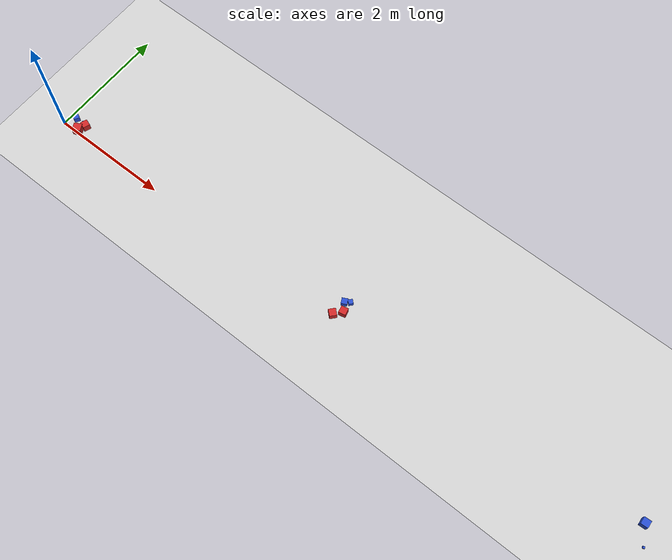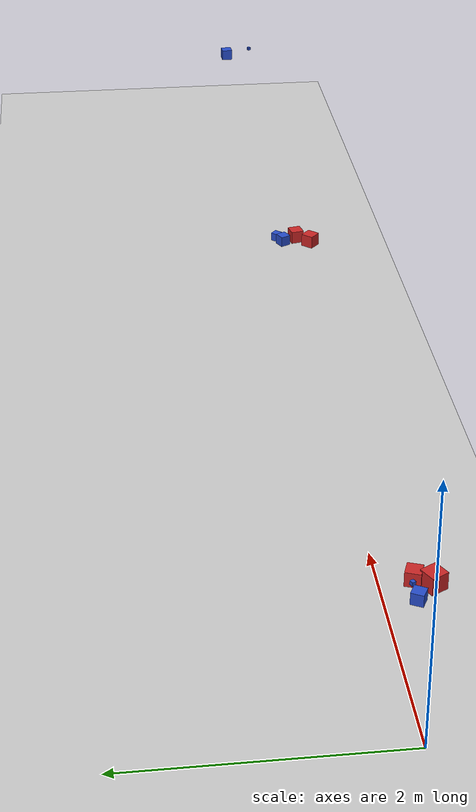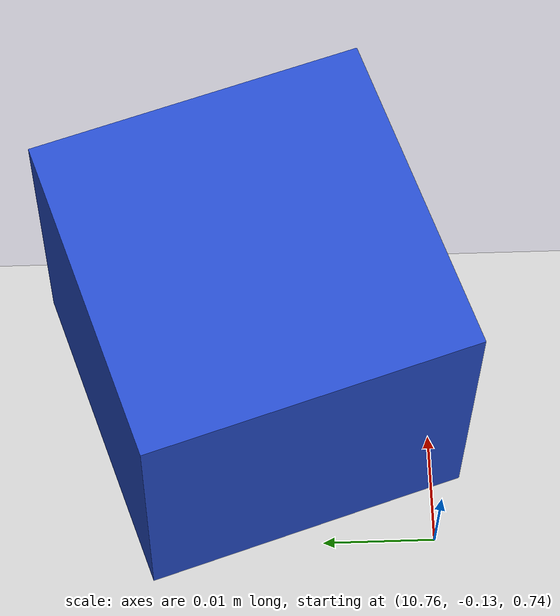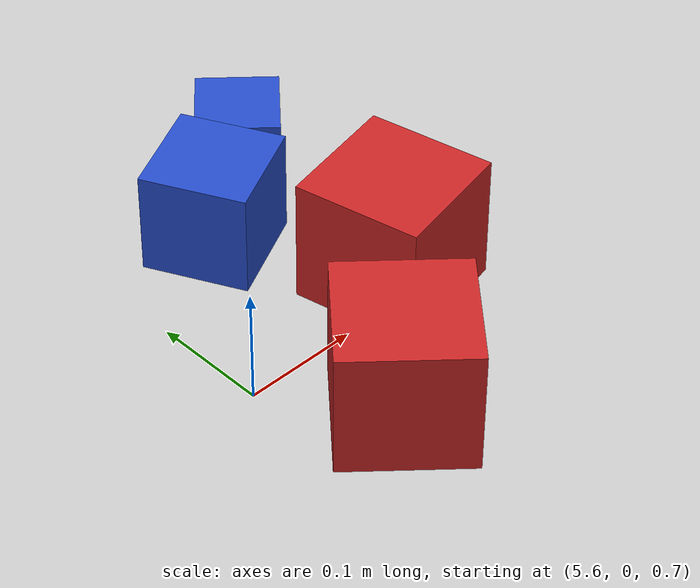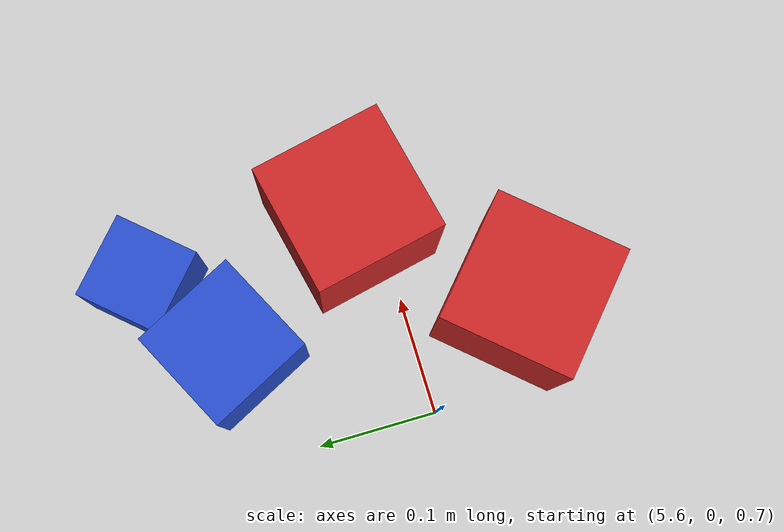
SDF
<sdf version="1.4">
 <world name="simple">
  <include><uri>model://ground_plane</uri></include>
  <include><uri>model://sun</uri></include>
  <include>
   <uri>model://red_cube11cm</uri>
   <name>block11</name>
   <pose>0.754880411714 -0.0436306564323 0.75 0 0 -1.92317189392</pose>
  </include>
  <include>
   <uri>model://blue_cube9cm</uri>
   <name>block12</name>
   <pose>0.545441286525 -0.0335329104321 0.75 0 0 -0.482542442139</pose>
  </include>
  <include>
   <uri>model://red_cube13cm</uri>
   <name>block13</name>
   <pose>0.704410546982 -0.163405454771 0.75 0 0 0.497745082275</pose>
  </include>
  <include>
   <uri>model://blue_cube3cm</uri>
   <name>block14</name>
   <pose>0.681433549751 -0.0222561867379 0.75 0 0 -2.65742875703</pose>
  </include>
  <include>
   <uri>model://red_cube11cm</uri>
   <name>block21</name>
   <pose>5.66863076144 -0.0925170860116 0.75 0 0 2.41361506734</pose>
  </include>
  <include>
   <uri>model://blue_cube7cm</uri>
   <name>block22</name>
   <pose>5.76615813315 0.198740282912 0.75 0 0 -2.29880798425</pose>
  </include>
  <include>
   <uri>model://red_cube11cm</uri>
   <name>block23</name>
   <pose>5.77336483006 0.0245632001172 0.75 0 0 -2.9273801447</pose>
  </include>
  <include>
   <uri>model://blue_cube9cm</uri>
   <name>block24</name>
   <pose>5.69436741538 0.148233165353 0.75 0 0 -2.67254816571</pose>
  </include>
  <include>
   <uri>model://blue_cube11cm</uri>
   <name>block32</name>
   <pose>10.6341067871 0.162633380396 0.75 0 0 -1.51383358031</pose>
  </include>
  <include>
   <uri>model://blue_cube3cm</uri>
   <name>block34</name>
   <pose>10.7775802776 -0.114227282461 0.75 0 0 -2.82854383549</pose>
  </include>
 </world>
</sdf>

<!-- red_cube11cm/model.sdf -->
<sdf version='1.4'>
  <model name="red_cube11cm">
      <static>0</static>
      <link name='link'>
        <inertial>
          <mass>0.3</mass>
          <inertia>
            <ixx>0.001</ixx>
            <ixy>0.000000</ixy>
            <ixz>0.000000</ixz>
            <iyy>0.001</iyy>
            <iyz>0.000000</iyz>
            <izz>0.001</izz>
          </inertia>
        </inertial>
        <collision name='collision'>
          <geometry>
            <box>
              <size>0.110 0.110 0.110</size>
            </box>
          </geometry>
          <surface>
            <friction>
              <ode>
                <mu>5.0</mu>
                <mu2>5.0</mu2>
              </ode>
            </friction>
            <contact>
              <ode>
                <kp>1000000.0</kp>
                <kd>100.0</kd>
                <max_vel>1.0</max_vel>
                <min_depth>0.002</min_depth>
              </ode>
            </contact>
          </surface>
        </collision>
        <visual name='visual'>
          <geometry>
            <box>
              <size>0.110 0.110 0.110</size>
            </box>
          </geometry>
          <material>
            <script>
              <uri>file://media/materials/scripts/gazebo.material</uri>
              <name>Gazebo/Red</name>
            </script>
          </material>
        </visual>
        <velocity_decay>
          <linear>0.000000</linear>
          <angular>0.000000</angular>
        </velocity_decay>
        <self_collide>0</self_collide>
        <kinematic>0</kinematic>
        <gravity>1</gravity>
      </link>
  </model>
</sdf>

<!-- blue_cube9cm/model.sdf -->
<sdf version='1.4'>
  <model name="blue_cube9cm">
      <static>0</static>
      <link name='link'>
        <inertial>
          <mass>0.3</mass>
          <inertia>
            <ixx>0.001</ixx>
            <ixy>0.000000</ixy>
            <ixz>0.000000</ixz>
            <iyy>0.001</iyy>
            <iyz>0.000000</iyz>
            <izz>0.001</izz>
          </inertia>
        </inertial>
        <collision name='collision'>
          <geometry>
            <box>
              <size>0.090 0.090 0.090</size>
            </box>
          </geometry>
          <surface>
            <friction>
              <ode>
                <mu>5.0</mu>
                <mu2>5.0</mu2>
              </ode>
            </friction>
            <contact>
              <ode>
                <kp>1000000.0</kp>
                <kd>100.0</kd>
                <max_vel>1.0</max_vel>
                <min_depth>0.002</min_depth>
              </ode>
            </contact>
          </surface>
        </collision>
        <visual name='visual'>
          <geometry>
            <box>
              <size>0.090 0.090 0.090</size>
            </box>
          </geometry>
          <material>
            <script>
              <uri>file://media/materials/scripts/gazebo.material</uri>
              <name>Gazebo/Blue</name>
            </script>
          </material>
        </visual>
        <velocity_decay>
          <linear>0.000000</linear>
          <angular>0.000000</angular>
        </velocity_decay>
        <self_collide>0</self_collide>
        <kinematic>0</kinematic>
        <gravity>1</gravity>
      </link>
  </model>
</sdf>

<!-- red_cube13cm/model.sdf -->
<sdf version='1.4'>
  <model name="red_cube13cm">
      <static>0</static>
      <link name='link'>
        <inertial>
          <mass>0.3</mass>
          <inertia>
            <ixx>0.001</ixx>
            <ixy>0.000000</ixy>
            <ixz>0.000000</ixz>
            <iyy>0.001</iyy>
            <iyz>0.000000</iyz>
            <izz>0.001</izz>
          </inertia>
        </inertial>
        <collision name='collision'>
          <geometry>
            <box>
              <size>0.130 0.130 0.130</size>
            </box>
          </geometry>
          <surface>
            <friction>
              <ode>
                <mu>5.0</mu>
                <mu2>5.0</mu2>
              </ode>
            </friction>
            <contact>
              <ode>
                <kp>1000000.0</kp>
                <kd>100.0</kd>
                <max_vel>1.0</max_vel>
                <min_depth>0.002</min_depth>
              </ode>
            </contact>
          </surface>
        </collision>
        <visual name='visual'>
          <geometry>
            <box>
              <size>0.130 0.130 0.130</size>
            </box>
          </geometry>
          <material>
            <script>
              <uri>file://media/materials/scripts/gazebo.material</uri>
              <name>Gazebo/Red</name>
            </script>
          </material>
        </visual>
        <velocity_decay>
          <linear>0.000000</linear>
          <angular>0.000000</angular>
        </velocity_decay>
        <self_collide>0</self_collide>
        <kinematic>0</kinematic>
        <gravity>1</gravity>
      </link>
  </model>
</sdf>

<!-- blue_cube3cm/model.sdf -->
<sdf version='1.4'>
  <model name="blue_cube3cm">
      <static>0</static>
      <link name='link'>
        <inertial>
          <mass>0.3</mass>
          <inertia>
            <ixx>0.001</ixx>
            <ixy>0.000000</ixy>
            <ixz>0.000000</ixz>
            <iyy>0.001</iyy>
            <iyz>0.000000</iyz>
            <izz>0.001</izz>
          </inertia>
        </inertial>
        <collision name='collision'>
          <geometry>
            <box>
              <size>0.030 0.030 0.030</size>
            </box>
          </geometry>
          <surface>
            <friction>
              <ode>
                <mu>5.0</mu>
                <mu2>5.0</mu2>
              </ode>
            </friction>
            <contact>
              <ode>
                <kp>1000000.0</kp>
                <kd>100.0</kd>
                <max_vel>1.0</max_vel>
                <min_depth>0.002</min_depth>
              </ode>
            </contact>
          </surface>
        </collision>
        <visual name='visual'>
          <geometry>
            <box>
              <size>0.030 0.030 0.030</size>
            </box>
          </geometry>
          <material>
            <script>
              <uri>file://media/materials/scripts/gazebo.material</uri>
              <name>Gazebo/Blue</name>
            </script>
          </material>
        </visual>
        <velocity_decay>
          <linear>0.000000</linear>
          <angular>0.000000</angular>
        </velocity_decay>
        <self_collide>0</self_collide>
        <kinematic>0</kinematic>
        <gravity>1</gravity>
      </link>
  </model>
</sdf>

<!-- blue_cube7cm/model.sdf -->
<sdf version='1.4'>
  <model name="blue_cube7cm">
      <static>0</static>
      <link name='link'>
        <inertial>
          <mass>0.3</mass>
          <inertia>
            <ixx>0.001</ixx>
            <ixy>0.000000</ixy>
            <ixz>0.000000</ixz>
            <iyy>0.001</iyy>
            <iyz>0.000000</iyz>
            <izz>0.001</izz>
          </inertia>
        </inertial>
        <collision name='collision'>
          <geometry>
            <box>
              <size>0.070 0.070 0.070</size>
            </box>
          </geometry>
          <surface>
            <friction>
              <ode>
                <mu>5.0</mu>
                <mu2>5.0</mu2>
              </ode>
            </friction>
            <contact>
              <ode>
                <kp>1000000.0</kp>
                <kd>100.0</kd>
                <max_vel>1.0</max_vel>
                <min_depth>0.002</min_depth>
              </ode>
            </contact>
          </surface>
        </collision>
        <visual name='visual'>
          <geometry>
            <box>
              <size>0.070 0.070 0.070</size>
            </box>
          </geometry>
          <material>
            <script>
              <uri>file://media/materials/scripts/gazebo.material</uri>
              <name>Gazebo/Blue</name>
            </script>
          </material>
        </visual>
        <velocity_decay>
          <linear>0.000000</linear>
          <angular>0.000000</angular>
        </velocity_decay>
        <self_collide>0</self_collide>
        <kinematic>0</kinematic>
        <gravity>1</gravity>
      </link>
  </model>
</sdf>

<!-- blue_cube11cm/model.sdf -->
<sdf version='1.4'>
  <model name="blue_cube11cm">
      <static>0</static>
      <link name='link'>
        <inertial>
          <mass>0.3</mass>
          <inertia>
            <ixx>0.001</ixx>
            <ixy>0.000000</ixy>
            <ixz>0.000000</ixz>
            <iyy>0.001</iyy>
            <iyz>0.000000</iyz>
            <izz>0.001</izz>
          </inertia>
        </inertial>
        <collision name='collision'>
          <geometry>
            <box>
              <size>0.110 0.110 0.110</size>
            </box>
          </geometry>
          <surface>
            <friction>
              <ode>
                <mu>5.0</mu>
                <mu2>5.0</mu2>
              </ode>
            </friction>
            <contact>
              <ode>
                <kp>1000000.0</kp>
                <kd>100.0</kd>
                <max_vel>1.0</max_vel>
                <min_depth>0.002</min_depth>
              </ode>
            </contact>
          </surface>
        </collision>
        <visual name='visual'>
          <geometry>
            <box>
              <size>0.110 0.110 0.110</size>
            </box>
          </geometry>
          <material>
            <script>
              <uri>file://media/materials/scripts/gazebo.material</uri>
              <name>Gazebo/Blue</name>
            </script>
          </material>
        </visual>
        <velocity_decay>
          <linear>0.000000</linear>
          <angular>0.000000</angular>
        </velocity_decay>
        <self_collide>0</self_collide>
        <kinematic>0</kinematic>
        <gravity>1</gravity>
      </link>
  </model>
</sdf>
